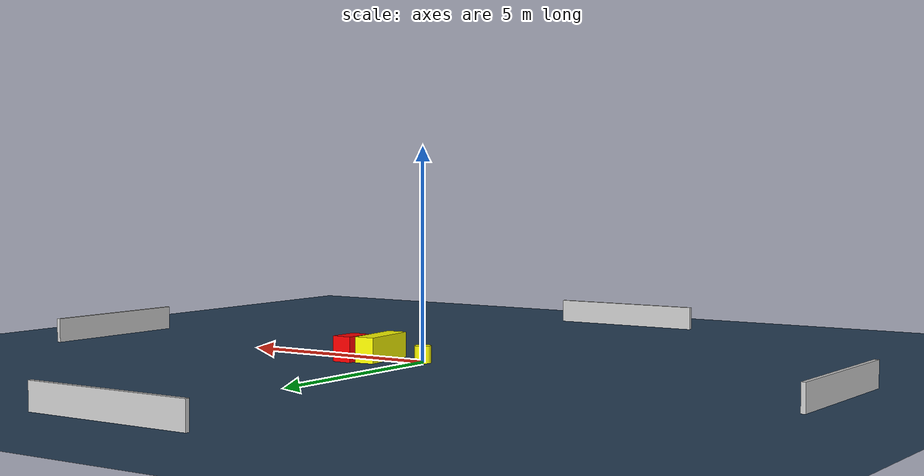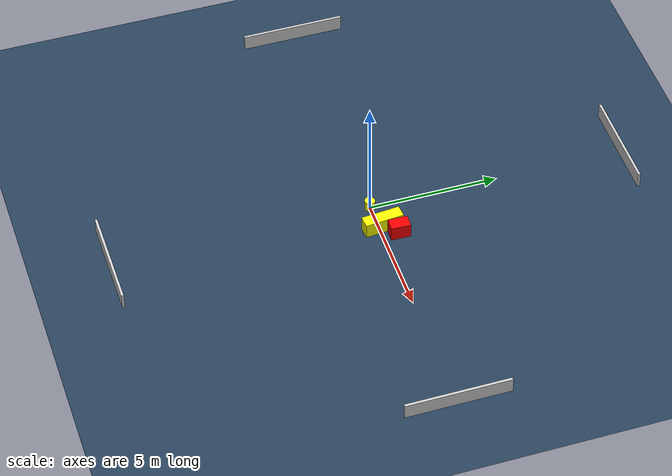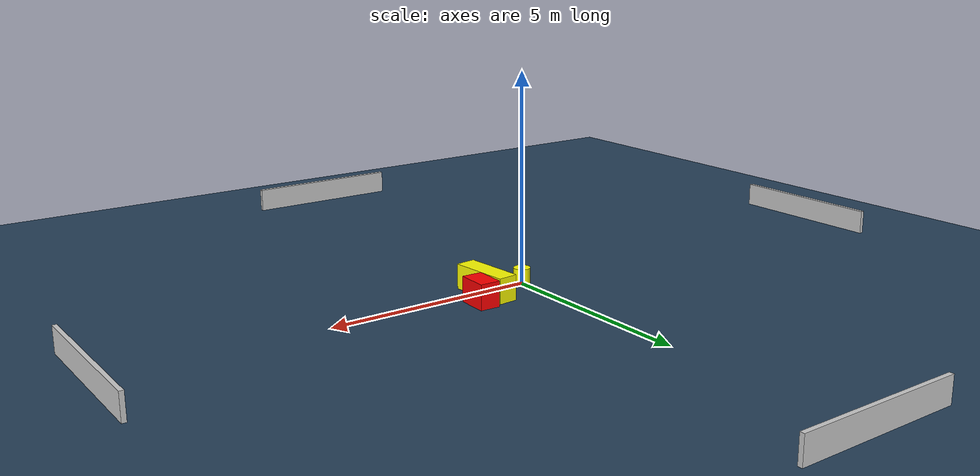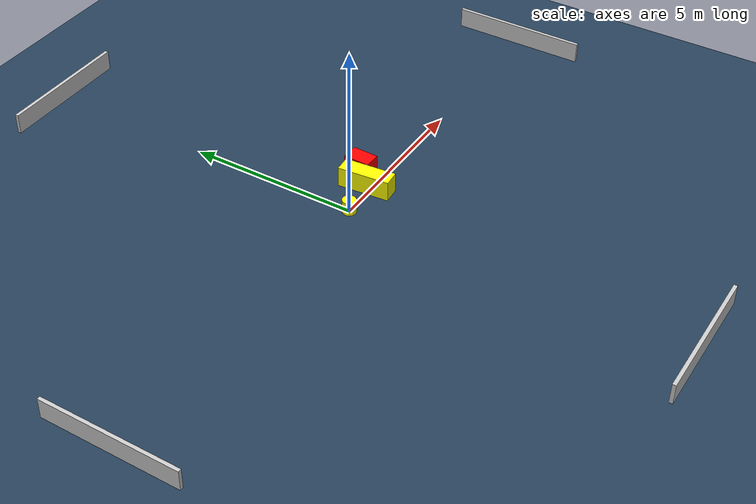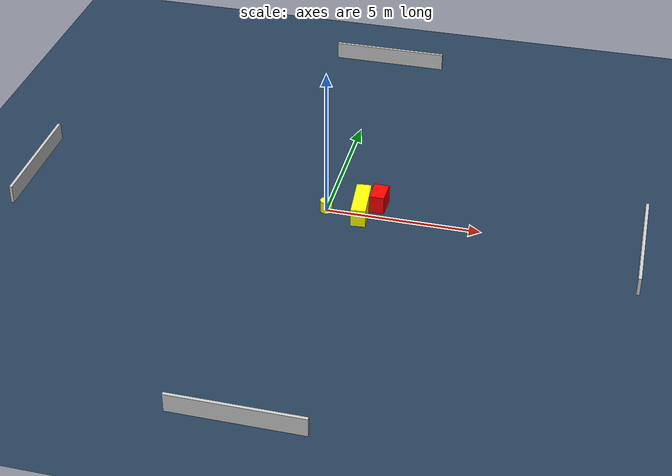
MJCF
<?xml version="1.0" ?>
<mujoco model="generated_environment">
  <option timestep="0.01" integrator="RK4" cone="elliptic"/>
  <default>
    <geom density="1"/>
  </default>
  <asset>
    <texture builtin="gradient" height="3072" name="skybox" rgb1="0.3 0.5 0.7" rgb2="0 0 0" type="skybox" width="512"/>
    <texture builtin="checker" height="300" name="groundplane" rgb1="0.2 0.3 0.4" rgb2="0.1 0.2 0.3" type="2d" width="300"/>
    <material name="groundplane" reflectance="0.2" texrepeat="5 5" texture="groundplane"/>
  </asset>
  <worldbody>
    <light dir="0 0 -1" directional="true" pos="0 0 1.5"/>
    <geom condim="3" friction="0.5 0.005 0.001" material="groundplane" name="floor" pos="0 0 0" size="0 0 0.05" type="plane"/>
    <body name="walls">
      <geom name="wall_1" condim="4" pos="-10.0 0.0 0.3" rgba="0.800000011920929 0.800000011920929 0.800000011920929 1.0" size="0.05 2.0 0.3" type="box"/>
      <geom name="wall_2" condim="4" pos="10.0 0.0 0.3" rgba="0.800000011920929 0.800000011920929 0.800000011920929 1.0" size="0.05 2.0 0.3" type="box"/>
      <geom name="wall_3" condim="4" pos="0.0 -10.0 0.3" rgba="0.800000011920929 0.800000011920929 0.800000011920929 1.0" size="2.0 0.05 0.3" type="box"/>
      <geom name="wall_4" condim="4" pos="0.0 10.0 0.3" rgba="0.800000011920929 0.800000011920929 0.800000011920929 1.0" size="2.0 0.05 0.3" type="box"/>
    </body>
    <body name="robot">
      <joint name="joint_x" type="slide" pos="0 0 0" axis="1 0 0"/>
      <joint name="joint_y" type="slide" pos="0 0 0" axis="0 1 0"/>
      <geom name="robot" type="cylinder" pos="0.0 0.0 0.2" size="0.2 0.2 0.0" mass="5.0" friction="1.0 0.005 0.0001" condim="4" rgba="1.0 1.0 0.0 1.0"/>
    </body>
    <body name="obstacle_1_movable">
      <geom name="obstacle_1_movable" condim="4" pos="1.1098018834922694 0.1331525013473075 0.3" euler="0 0 275.048363127358" friction="0.0 0.005 0.001" rgba="1.0 1.0 0.0 1.0" size="0.7519291820825993 0.23972080335291476 0.3" type="box" mass="0.1"/>
      <joint type="free"/>
    </body>
    <body name="obstacle_2_static">
      <geom name="obstacle_2_static" condim="4" pos="1.5976936087943692 0.62258280949427 0.3" euler="0 0 178.28242065347115" friction="0.0 0.005 0.001" rgba="1.0 0.0 0.0 1.0" size="0.2441139015364187 0.37775389484607147 0.3" type="box"/>
    </body>
  </worldbody>
  <actuator>
    <motor name="actuator_x" joint="joint_x" gear="1" ctrlrange="-1 1"/>
    <motor name="actuator_y" joint="joint_y" gear="1" ctrlrange="-1 1"/>
  </actuator>
</mujoco>
